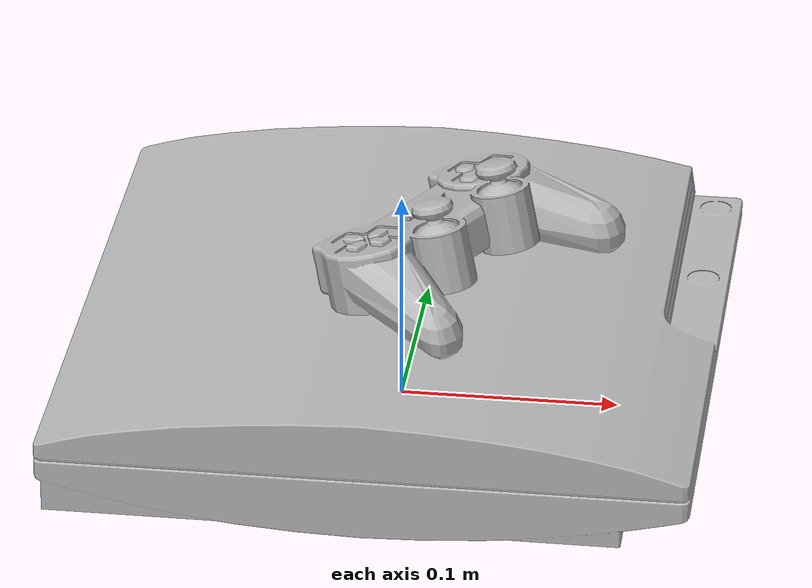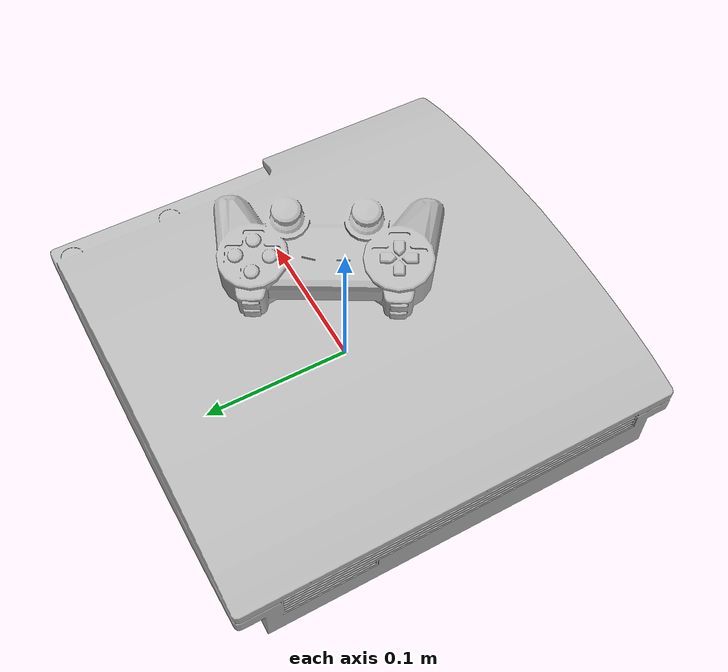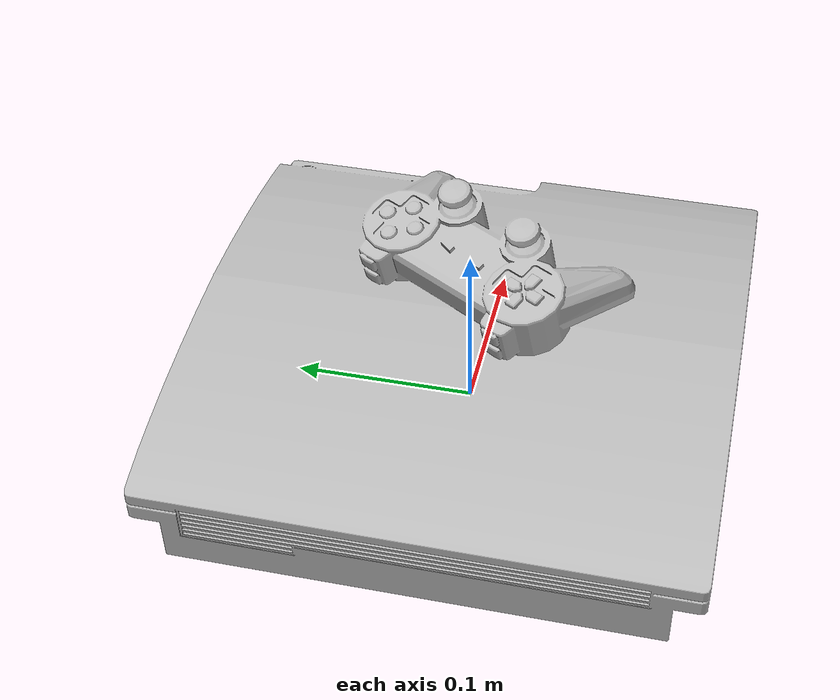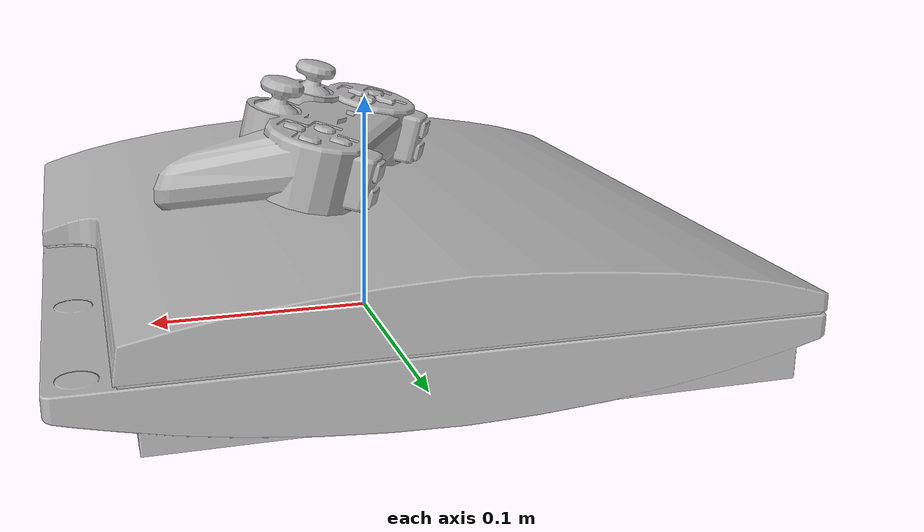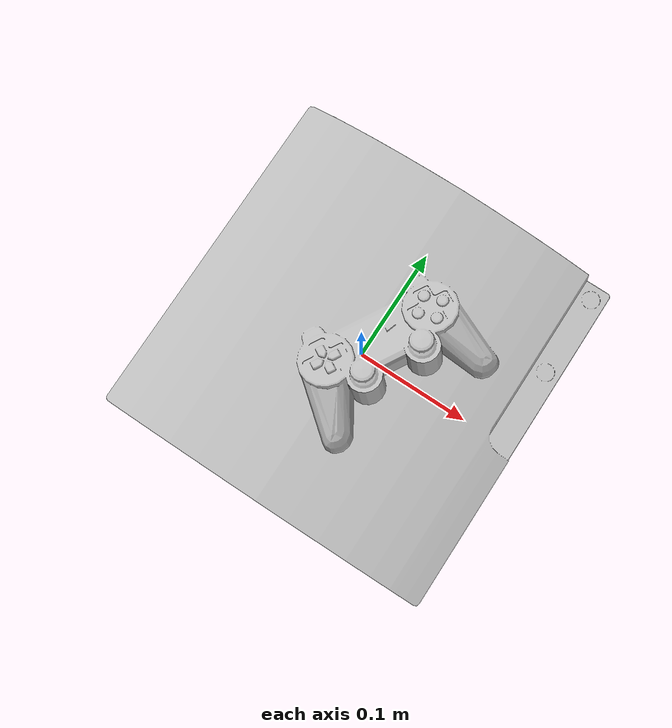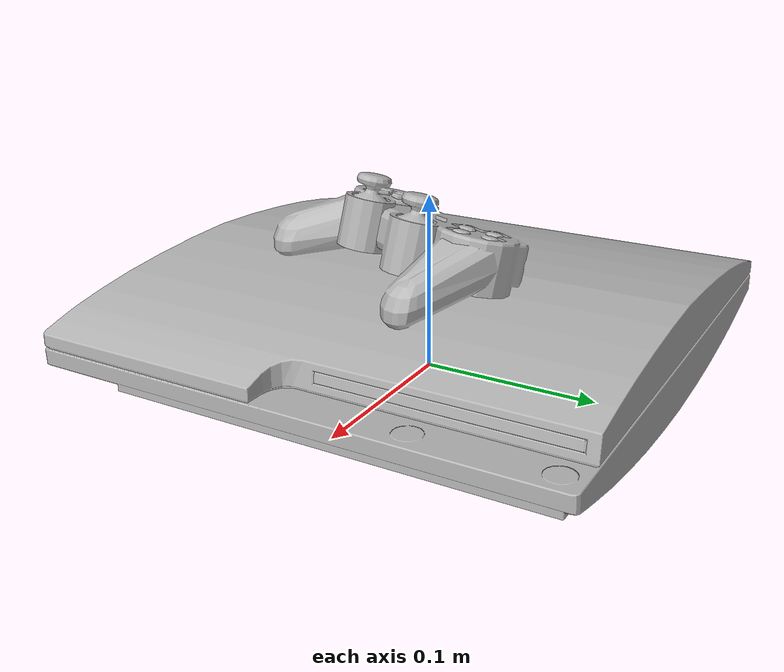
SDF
<?xml version='1.0'?>
<sdf version='1.4'>
  <model name='345'>
    <pose>0 0 0 0 0 0</pose>
    <static>true</static>
    <link name='link'>
      <collision name='collision'>
        <pose>0 0 0 0 0 0</pose>
        <geometry>
          <box>
            <size>0.289994 0.289948 2</size>
          </box>
        </geometry>
      </collision>
      <visual name='visual'>
        <pose>0 0 0 0 0 0</pose>
        <geometry>
          <mesh><uri>model://345/345.dae</uri></mesh>
        </geometry>
      </visual>
    </link>
  </model>
</sdf>
